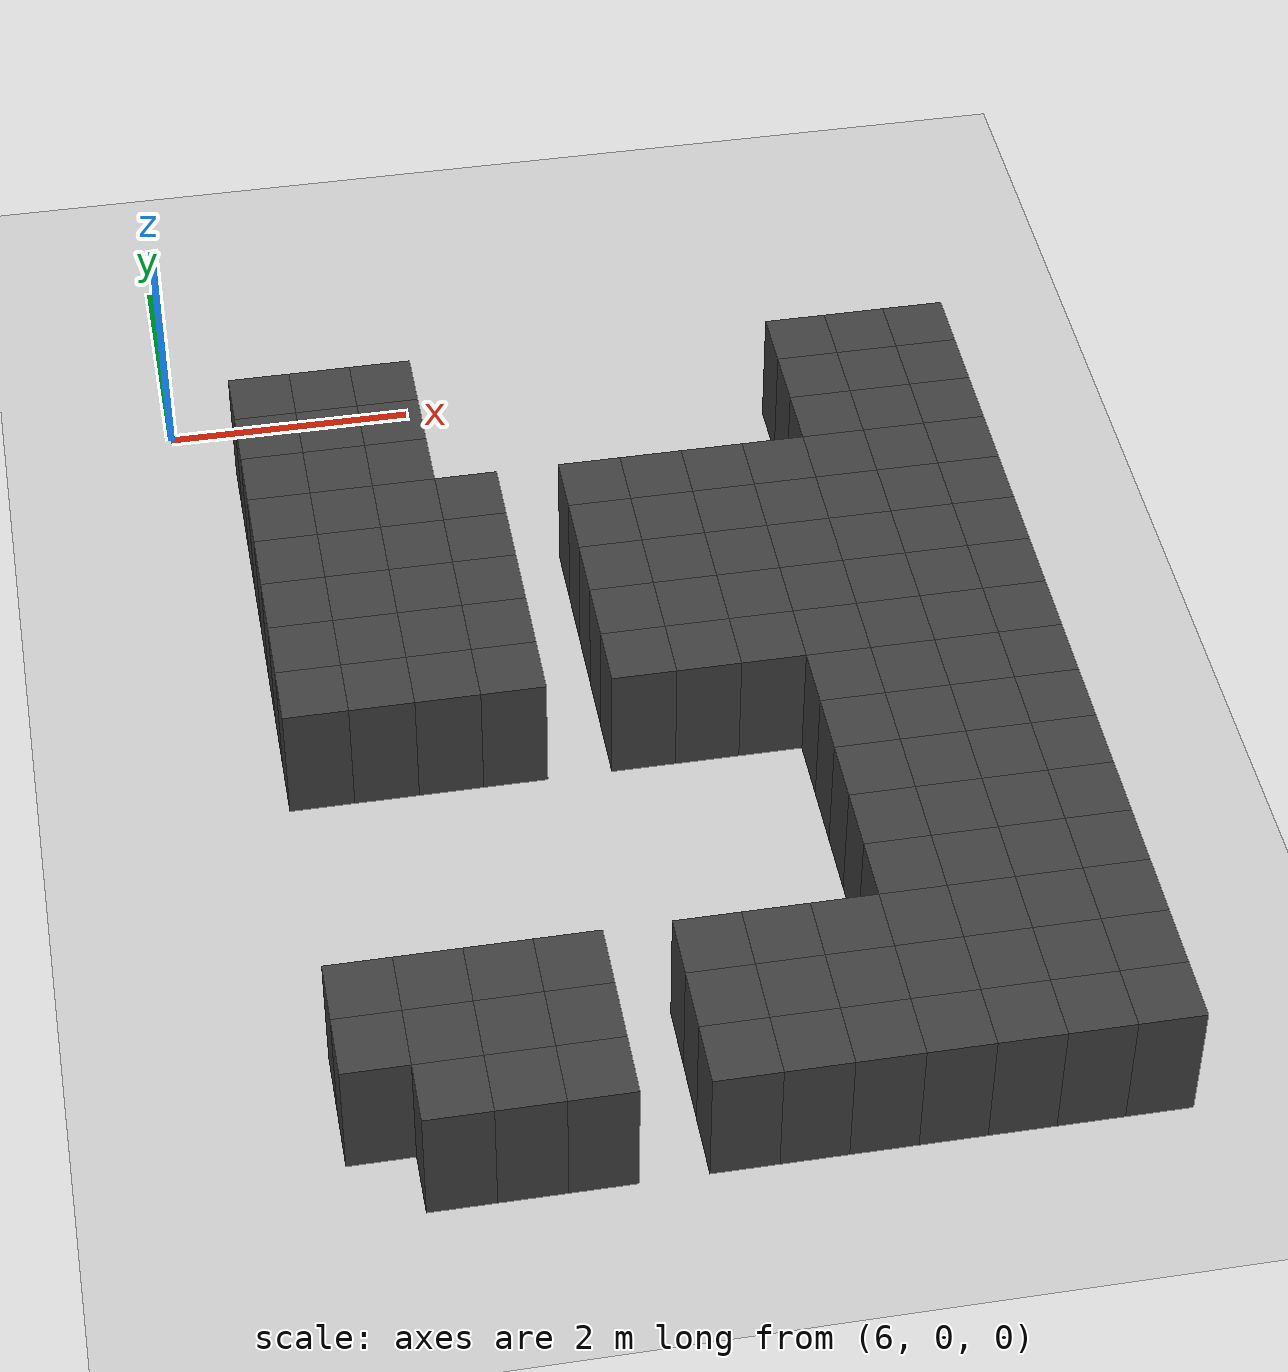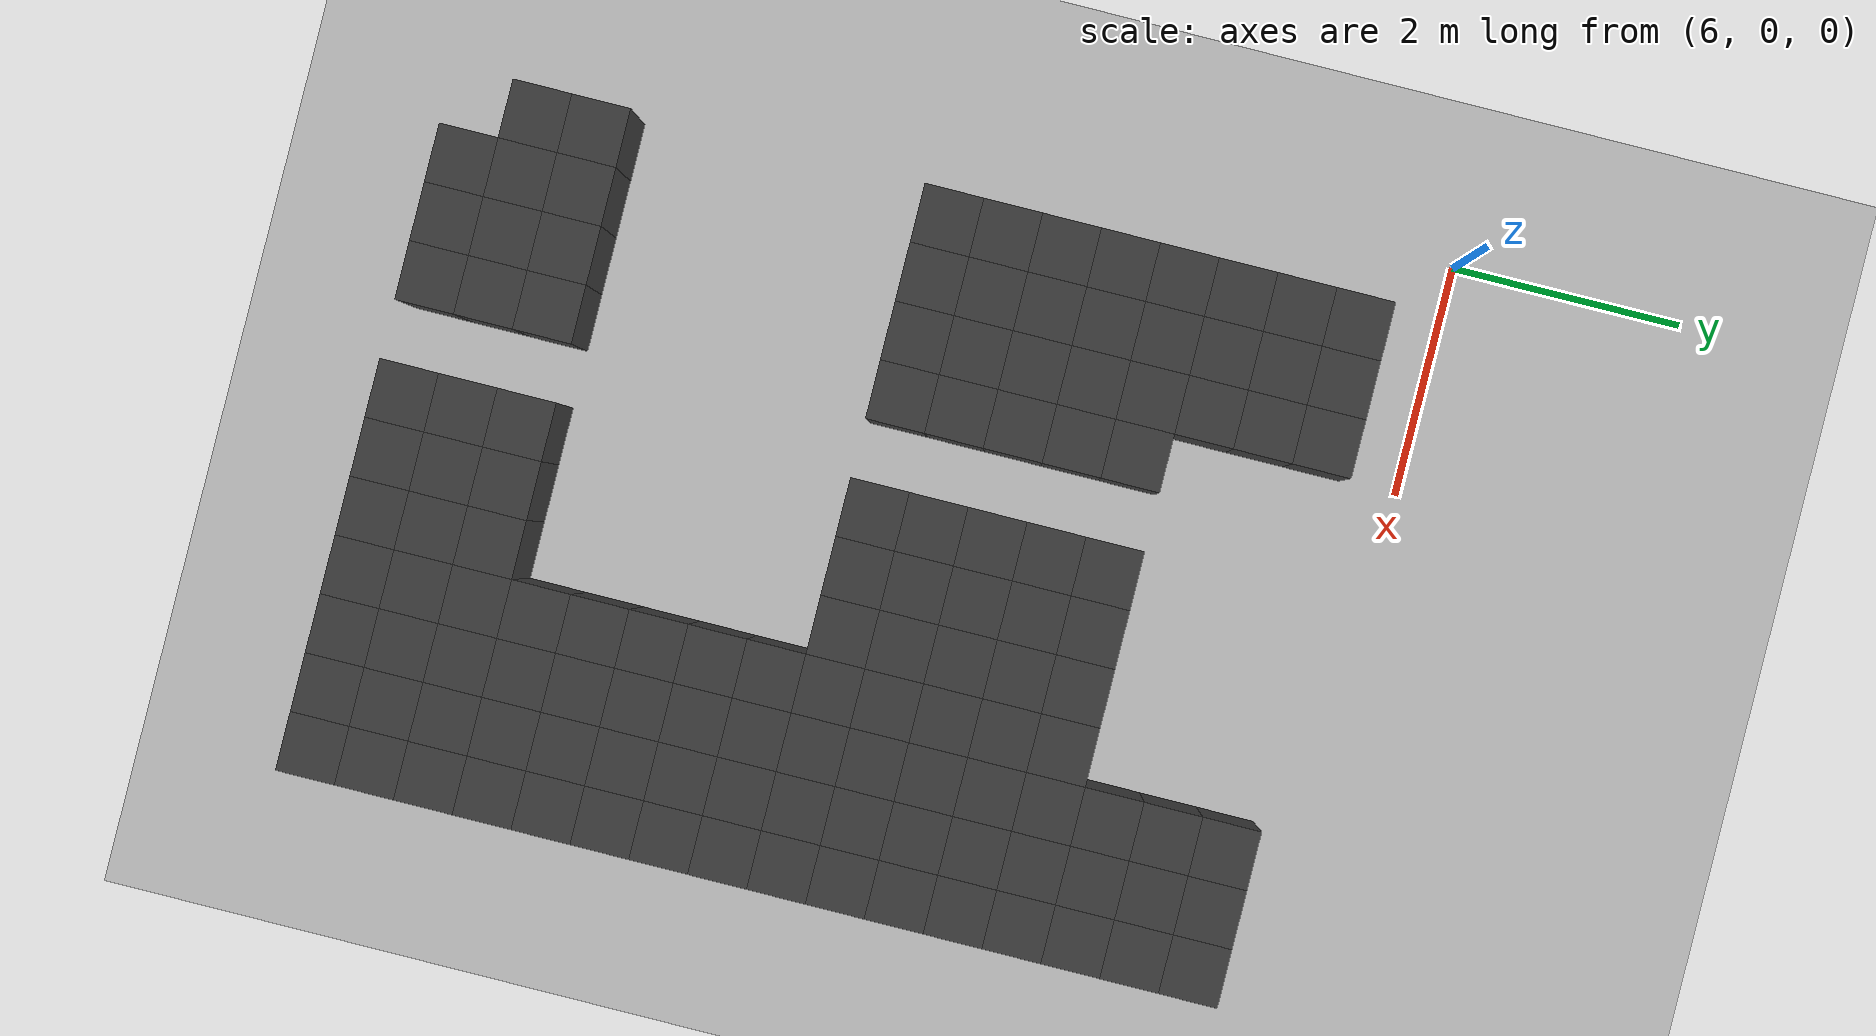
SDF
<sdf version="1.7">
 <world name="map_14495">
  <model name="ground_plane">
   <static>true</static>
   <link name="link">
    <collision name="collision">
     <geometry><plane><normal>0 0 1</normal><size>200 200</size></plane></geometry>
    </collision>
    <visual name="visual">
     <geometry><plane><normal>0 0 1</normal><size>200 200</size></plane></geometry>
     <material><ambient>0.8 0.8 0.8 1</ambient><diffuse>0.8 0.8 0.8 1</diffuse></material>
    </visual>
   </link>
  </model>
  <model name="maze_environment">
   <static>true</static>
   <link name="wall_988">
    <pose>6.750 -0.750 0.500 0 0 0</pose>
    <collision name="col"><geometry><box><size>0.5 0.5 1.0</size></box></geometry></collision>
    <visual name="vis">
     <geometry><box><size>0.5 0.5 1.0</size></box></geometry>
     <material><ambient>0.15 0.15 0.15 1</ambient><diffuse>0.25 0.25 0.25 1</diffuse></material>
    </visual>
   </link>
   <link name="wall_989">
    <pose>7.250 -0.750 0.500 0 0 0</pose>
    <collision name="col"><geometry><box><size>0.5 0.5 1.0</size></box></geometry></collision>
    <visual name="vis">
     <geometry><box><size>0.5 0.5 1.0</size></box></geometry>
     <material><ambient>0.15 0.15 0.15 1</ambient><diffuse>0.25 0.25 0.25 1</diffuse></material>
    </visual>
   </link>
   <link name="wall_990">
    <pose>7.750 -0.750 0.500 0 0 0</pose>
    <collision name="col"><geometry><box><size>0.5 0.5 1.0</size></box></geometry></collision>
    <visual name="vis">
     <geometry><box><size>0.5 0.5 1.0</size></box></geometry>
     <material><ambient>0.15 0.15 0.15 1</ambient><diffuse>0.25 0.25 0.25 1</diffuse></material>
    </visual>
   </link>
   <link name="wall_991">
    <pose>11.250 -0.750 0.500 0 0 0</pose>
    <collision name="col"><geometry><box><size>0.5 0.5 1.0</size></box></geometry></collision>
    <visual name="vis">
     <geometry><box><size>0.5 0.5 1.0</size></box></geometry>
     <material><ambient>0.15 0.15 0.15 1</ambient><diffuse>0.25 0.25 0.25 1</diffuse></material>
    </visual>
   </link>
   <link name="wall_992">
    <pose>11.750 -0.750 0.500 0 0 0</pose>
    <collision name="col"><geometry><box><size>0.5 0.5 1.0</size></box></geometry></collision>
    <visual name="vis">
     <geometry><box><size>0.5 0.5 1.0</size></box></geometry>
     <material><ambient>0.15 0.15 0.15 1</ambient><diffuse>0.25 0.25 0.25 1</diffuse></material>
    </visual>
   </link>
   <link name="wall_993">
    <pose>12.250 -0.750 0.500 0 0 0</pose>
    <collision name="col"><geometry><box><size>0.5 0.5 1.0</size></box></geometry></collision>
    <visual name="vis">
     <geometry><box><size>0.5 0.5 1.0</size></box></geometry>
     <material><ambient>0.15 0.15 0.15 1</ambient><diffuse>0.25 0.25 0.25 1</diffuse></material>
    </visual>
   </link>
   <link name="wall_1014">
    <pose>6.750 -1.250 0.500 0 0 0</pose>
    <collision name="col"><geometry><box><size>0.5 0.5 1.0</size></box></geometry></collision>
    <visual name="vis">
     <geometry><box><size>0.5 0.5 1.0</size></box></geometry>
     <material><ambient>0.15 0.15 0.15 1</ambient><diffuse>0.25 0.25 0.25 1</diffuse></material>
    </visual>
   </link>
   <link name="wall_1015">
    <pose>7.250 -1.250 0.500 0 0 0</pose>
    <collision name="col"><geometry><box><size>0.5 0.5 1.0</size></box></geometry></collision>
    <visual name="vis">
     <geometry><box><size>0.5 0.5 1.0</size></box></geometry>
     <material><ambient>0.15 0.15 0.15 1</ambient><diffuse>0.25 0.25 0.25 1</diffuse></material>
    </visual>
   </link>
   <link name="wall_1016">
    <pose>7.750 -1.250 0.500 0 0 0</pose>
    <collision name="col"><geometry><box><size>0.5 0.5 1.0</size></box></geometry></collision>
    <visual name="vis">
     <geometry><box><size>0.5 0.5 1.0</size></box></geometry>
     <material><ambient>0.15 0.15 0.15 1</ambient><diffuse>0.25 0.25 0.25 1</diffuse></material>
    </visual>
   </link>
   <link name="wall_1017">
    <pose>11.250 -1.250 0.500 0 0 0</pose>
    <collision name="col"><geometry><box><size>0.5 0.5 1.0</size></box></geometry></collision>
    <visual name="vis">
     <geometry><box><size>0.5 0.5 1.0</size></box></geometry>
     <material><ambient>0.15 0.15 0.15 1</ambient><diffuse>0.25 0.25 0.25 1</diffuse></material>
    </visual>
   </link>
   <link name="wall_1018">
    <pose>11.750 -1.250 0.500 0 0 0</pose>
    <collision name="col"><geometry><box><size>0.5 0.5 1.0</size></box></geometry></collision>
    <visual name="vis">
     <geometry><box><size>0.5 0.5 1.0</size></box></geometry>
     <material><ambient>0.15 0.15 0.15 1</ambient><diffuse>0.25 0.25 0.25 1</diffuse></material>
    </visual>
   </link>
   <link name="wall_1019">
    <pose>12.250 -1.250 0.500 0 0 0</pose>
    <collision name="col"><geometry><box><size>0.5 0.5 1.0</size></box></geometry></collision>
    <visual name="vis">
     <geometry><box><size>0.5 0.5 1.0</size></box></geometry>
     <material><ambient>0.15 0.15 0.15 1</ambient><diffuse>0.25 0.25 0.25 1</diffuse></material>
    </visual>
   </link>
   <link name="wall_1040">
    <pose>6.750 -1.750 0.500 0 0 0</pose>
    <collision name="col"><geometry><box><size>0.5 0.5 1.0</size></box></geometry></collision>
    <visual name="vis">
     <geometry><box><size>0.5 0.5 1.0</size></box></geometry>
     <material><ambient>0.15 0.15 0.15 1</ambient><diffuse>0.25 0.25 0.25 1</diffuse></material>
    </visual>
   </link>
   <link name="wall_1041">
    <pose>7.250 -1.750 0.500 0 0 0</pose>
    <collision name="col"><geometry><box><size>0.5 0.5 1.0</size></box></geometry></collision>
    <visual name="vis">
     <geometry><box><size>0.5 0.5 1.0</size></box></geometry>
     <material><ambient>0.15 0.15 0.15 1</ambient><diffuse>0.25 0.25 0.25 1</diffuse></material>
    </visual>
   </link>
   <link name="wall_1042">
    <pose>7.750 -1.750 0.500 0 0 0</pose>
    <collision name="col"><geometry><box><size>0.5 0.5 1.0</size></box></geometry></collision>
    <visual name="vis">
     <geometry><box><size>0.5 0.5 1.0</size></box></geometry>
     <material><ambient>0.15 0.15 0.15 1</ambient><diffuse>0.25 0.25 0.25 1</diffuse></material>
    </visual>
   </link>
   <link name="wall_1043">
    <pose>11.250 -1.750 0.500 0 0 0</pose>
    <collision name="col"><geometry><box><size>0.5 0.5 1.0</size></box></geometry></collision>
    <visual name="vis">
     <geometry><box><size>0.5 0.5 1.0</size></box></geometry>
     <material><ambient>0.15 0.15 0.15 1</ambient><diffuse>0.25 0.25 0.25 1</diffuse></material>
    </visual>
   </link>
   <link name="wall_1044">
    <pose>11.750 -1.750 0.500 0 0 0</pose>
    <collision name="col"><geometry><box><size>0.5 0.5 1.0</size></box></geometry></collision>
    <visual name="vis">
     <geometry><box><size>0.5 0.5 1.0</size></box></geometry>
     <material><ambient>0.15 0.15 0.15 1</ambient><diffuse>0.25 0.25 0.25 1</diffuse></material>
    </visual>
   </link>
   <link name="wall_1045">
    <pose>12.250 -1.750 0.500 0 0 0</pose>
    <collision name="col"><geometry><box><size>0.5 0.5 1.0</size></box></geometry></collision>
    <visual name="vis">
     <geometry><box><size>0.5 0.5 1.0</size></box></geometry>
     <material><ambient>0.15 0.15 0.15 1</ambient><diffuse>0.25 0.25 0.25 1</diffuse></material>
    </visual>
   </link>
   <link name="wall_1068">
    <pose>6.750 -2.250 0.500 0 0 0</pose>
    <collision name="col"><geometry><box><size>0.5 0.5 1.0</size></box></geometry></collision>
    <visual name="vis">
     <geometry><box><size>0.5 0.5 1.0</size></box></geometry>
     <material><ambient>0.15 0.15 0.15 1</ambient><diffuse>0.25 0.25 0.25 1</diffuse></material>
    </visual>
   </link>
   <link name="wall_1069">
    <pose>7.250 -2.250 0.500 0 0 0</pose>
    <collision name="col"><geometry><box><size>0.5 0.5 1.0</size></box></geometry></collision>
    <visual name="vis">
     <geometry><box><size>0.5 0.5 1.0</size></box></geometry>
     <material><ambient>0.15 0.15 0.15 1</ambient><diffuse>0.25 0.25 0.25 1</diffuse></material>
    </visual>
   </link>
   <link name="wall_1070">
    <pose>7.750 -2.250 0.500 0 0 0</pose>
    <collision name="col"><geometry><box><size>0.5 0.5 1.0</size></box></geometry></collision>
    <visual name="vis">
     <geometry><box><size>0.5 0.5 1.0</size></box></geometry>
     <material><ambient>0.15 0.15 0.15 1</ambient><diffuse>0.25 0.25 0.25 1</diffuse></material>
    </visual>
   </link>
   <link name="wall_1071">
    <pose>8.250 -2.250 0.500 0 0 0</pose>
    <collision name="col"><geometry><box><size>0.5 0.5 1.0</size></box></geometry></collision>
    <visual name="vis">
     <geometry><box><size>0.5 0.5 1.0</size></box></geometry>
     <material><ambient>0.15 0.15 0.15 1</ambient><diffuse>0.25 0.25 0.25 1</diffuse></material>
    </visual>
   </link>
   <link name="wall_1072">
    <pose>9.250 -2.250 0.500 0 0 0</pose>
    <collision name="col"><geometry><box><size>0.5 0.5 1.0</size></box></geometry></collision>
    <visual name="vis">
     <geometry><box><size>0.5 0.5 1.0</size></box></geometry>
     <material><ambient>0.15 0.15 0.15 1</ambient><diffuse>0.25 0.25 0.25 1</diffuse></material>
    </visual>
   </link>
   <link name="wall_1073">
    <pose>9.750 -2.250 0.500 0 0 0</pose>
    <collision name="col"><geometry><box><size>0.5 0.5 1.0</size></box></geometry></collision>
    <visual name="vis">
     <geometry><box><size>0.5 0.5 1.0</size></box></geometry>
     <material><ambient>0.15 0.15 0.15 1</ambient><diffuse>0.25 0.25 0.25 1</diffuse></material>
    </visual>
   </link>
   <link name="wall_1074">
    <pose>10.250 -2.250 0.500 0 0 0</pose>
    <collision name="col"><geometry><box><size>0.5 0.5 1.0</size></box></geometry></collision>
    <visual name="vis">
     <geometry><box><size>0.5 0.5 1.0</size></box></geometry>
     <material><ambient>0.15 0.15 0.15 1</ambient><diffuse>0.25 0.25 0.25 1</diffuse></material>
    </visual>
   </link>
   <link name="wall_1075">
    <pose>10.750 -2.250 0.500 0 0 0</pose>
    <collision name="col"><geometry><box><size>0.5 0.5 1.0</size></box></geometry></collision>
    <visual name="vis">
     <geometry><box><size>0.5 0.5 1.0</size></box></geometry>
     <material><ambient>0.15 0.15 0.15 1</ambient><diffuse>0.25 0.25 0.25 1</diffuse></material>
    </visual>
   </link>
   <link name="wall_1076">
    <pose>11.250 -2.250 0.500 0 0 0</pose>
    <collision name="col"><geometry><box><size>0.5 0.5 1.0</size></box></geometry></collision>
    <visual name="vis">
     <geometry><box><size>0.5 0.5 1.0</size></box></geometry>
     <material><ambient>0.15 0.15 0.15 1</ambient><diffuse>0.25 0.25 0.25 1</diffuse></material>
    </visual>
   </link>
   <link name="wall_1077">
    <pose>11.750 -2.250 0.500 0 0 0</pose>
    <collision name="col"><geometry><box><size>0.5 0.5 1.0</size></box></geometry></collision>
    <visual name="vis">
     <geometry><box><size>0.5 0.5 1.0</size></box></geometry>
     <material><ambient>0.15 0.15 0.15 1</ambient><diffuse>0.25 0.25 0.25 1</diffuse></material>
    </visual>
   </link>
   <link name="wall_1078">
    <pose>12.250 -2.250 0.500 0 0 0</pose>
    <collision name="col"><geometry><box><size>0.5 0.5 1.0</size></box></geometry></collision>
    <visual name="vis">
     <geometry><box><size>0.5 0.5 1.0</size></box></geometry>
     <material><ambient>0.15 0.15 0.15 1</ambient><diffuse>0.25 0.25 0.25 1</diffuse></material>
    </visual>
   </link>
   <link name="wall_1103">
    <pose>6.750 -2.750 0.500 0 0 0</pose>
    <collision name="col"><geometry><box><size>0.5 0.5 1.0</size></box></geometry></collision>
    <visual name="vis">
     <geometry><box><size>0.5 0.5 1.0</size></box></geometry>
     <material><ambient>0.15 0.15 0.15 1</ambient><diffuse>0.25 0.25 0.25 1</diffuse></material>
    </visual>
   </link>
   <link name="wall_1104">
    <pose>7.250 -2.750 0.500 0 0 0</pose>
    <collision name="col"><geometry><box><size>0.5 0.5 1.0</size></box></geometry></collision>
    <visual name="vis">
     <geometry><box><size>0.5 0.5 1.0</size></box></geometry>
     <material><ambient>0.15 0.15 0.15 1</ambient><diffuse>0.25 0.25 0.25 1</diffuse></material>
    </visual>
   </link>
   <link name="wall_1105">
    <pose>7.750 -2.750 0.500 0 0 0</pose>
    <collision name="col"><geometry><box><size>0.5 0.5 1.0</size></box></geometry></collision>
    <visual name="vis">
     <geometry><box><size>0.5 0.5 1.0</size></box></geometry>
     <material><ambient>0.15 0.15 0.15 1</ambient><diffuse>0.25 0.25 0.25 1</diffuse></material>
    </visual>
   </link>
   <link name="wall_1106">
    <pose>8.250 -2.750 0.500 0 0 0</pose>
    <collision name="col"><geometry><box><size>0.5 0.5 1.0</size></box></geometry></collision>
    <visual name="vis">
     <geometry><box><size>0.5 0.5 1.0</size></box></geometry>
     <material><ambient>0.15 0.15 0.15 1</ambient><diffuse>0.25 0.25 0.25 1</diffuse></material>
    </visual>
   </link>
   <link name="wall_1107">
    <pose>9.250 -2.750 0.500 0 0 0</pose>
    <collision name="col"><geometry><box><size>0.5 0.5 1.0</size></box></geometry></collision>
    <visual name="vis">
     <geometry><box><size>0.5 0.5 1.0</size></box></geometry>
     <material><ambient>0.15 0.15 0.15 1</ambient><diffuse>0.25 0.25 0.25 1</diffuse></material>
    </visual>
   </link>
   <link name="wall_1108">
    <pose>9.750 -2.750 0.500 0 0 0</pose>
    <collision name="col"><geometry><box><size>0.5 0.5 1.0</size></box></geometry></collision>
    <visual name="vis">
     <geometry><box><size>0.5 0.5 1.0</size></box></geometry>
     <material><ambient>0.15 0.15 0.15 1</ambient><diffuse>0.25 0.25 0.25 1</diffuse></material>
    </visual>
   </link>
   <link name="wall_1109">
    <pose>10.250 -2.750 0.500 0 0 0</pose>
    <collision name="col"><geometry><box><size>0.5 0.5 1.0</size></box></geometry></collision>
    <visual name="vis">
     <geometry><box><size>0.5 0.5 1.0</size></box></geometry>
     <material><ambient>0.15 0.15 0.15 1</ambient><diffuse>0.25 0.25 0.25 1</diffuse></material>
    </visual>
   </link>
   <link name="wall_1110">
    <pose>10.750 -2.750 0.500 0 0 0</pose>
    <collision name="col"><geometry><box><size>0.5 0.5 1.0</size></box></geometry></collision>
    <visual name="vis">
     <geometry><box><size>0.5 0.5 1.0</size></box></geometry>
     <material><ambient>0.15 0.15 0.15 1</ambient><diffuse>0.25 0.25 0.25 1</diffuse></material>
    </visual>
   </link>
   <link name="wall_1111">
    <pose>11.250 -2.750 0.500 0 0 0</pose>
    <collision name="col"><geometry><box><size>0.5 0.5 1.0</size></box></geometry></collision>
    <visual name="vis">
     <geometry><box><size>0.5 0.5 1.0</size></box></geometry>
     <material><ambient>0.15 0.15 0.15 1</ambient><diffuse>0.25 0.25 0.25 1</diffuse></material>
    </visual>
   </link>
   <link name="wall_1112">
    <pose>11.750 -2.750 0.500 0 0 0</pose>
    <collision name="col"><geometry><box><size>0.5 0.5 1.0</size></box></geometry></collision>
    <visual name="vis">
     <geometry><box><size>0.5 0.5 1.0</size></box></geometry>
     <material><ambient>0.15 0.15 0.15 1</ambient><diffuse>0.25 0.25 0.25 1</diffuse></material>
    </visual>
   </link>
   <link name="wall_1113">
    <pose>12.250 -2.750 0.500 0 0 0</pose>
    <collision name="col"><geometry><box><size>0.5 0.5 1.0</size></box></geometry></collision>
    <visual name="vis">
     <geometry><box><size>0.5 0.5 1.0</size></box></geometry>
     <material><ambient>0.15 0.15 0.15 1</ambient><diffuse>0.25 0.25 0.25 1</diffuse></material>
    </visual>
   </link>
   <link name="wall_1138">
    <pose>6.750 -3.250 0.500 0 0 0</pose>
    <collision name="col"><geometry><box><size>0.5 0.5 1.0</size></box></geometry></collision>
    <visual name="vis">
     <geometry><box><size>0.5 0.5 1.0</size></box></geometry>
     <material><ambient>0.15 0.15 0.15 1</ambient><diffuse>0.25 0.25 0.25 1</diffuse></material>
    </visual>
   </link>
   <link name="wall_1139">
    <pose>7.250 -3.250 0.500 0 0 0</pose>
    <collision name="col"><geometry><box><size>0.5 0.5 1.0</size></box></geometry></collision>
    <visual name="vis">
     <geometry><box><size>0.5 0.5 1.0</size></box></geometry>
     <material><ambient>0.15 0.15 0.15 1</ambient><diffuse>0.25 0.25 0.25 1</diffuse></material>
    </visual>
   </link>
   <link name="wall_1140">
    <pose>7.750 -3.250 0.500 0 0 0</pose>
    <collision name="col"><geometry><box><size>0.5 0.5 1.0</size></box></geometry></collision>
    <visual name="vis">
     <geometry><box><size>0.5 0.5 1.0</size></box></geometry>
     <material><ambient>0.15 0.15 0.15 1</ambient><diffuse>0.25 0.25 0.25 1</diffuse></material>
    </visual>
   </link>
   <link name="wall_1141">
    <pose>8.250 -3.250 0.500 0 0 0</pose>
    <collision name="col"><geometry><box><size>0.5 0.5 1.0</size></box></geometry></collision>
    <visual name="vis">
     <geometry><box><size>0.5 0.5 1.0</size></box></geometry>
     <material><ambient>0.15 0.15 0.15 1</ambient><diffuse>0.25 0.25 0.25 1</diffuse></material>
    </visual>
   </link>
   <link name="wall_1142">
    <pose>9.250 -3.250 0.500 0 0 0</pose>
    <collision name="col"><geometry><box><size>0.5 0.5 1.0</size></box></geometry></collision>
    <visual name="vis">
     <geometry><box><size>0.5 0.5 1.0</size></box></geometry>
     <material><ambient>0.15 0.15 0.15 1</ambient><diffuse>0.25 0.25 0.25 1</diffuse></material>
    </visual>
   </link>
   <link name="wall_1143">
    <pose>9.750 -3.250 0.500 0 0 0</pose>
    <collision name="col"><geometry><box><size>0.5 0.5 1.0</size></box></geometry></collision>
    <visual name="vis">
     <geometry><box><size>0.5 0.5 1.0</size></box></geometry>
     <material><ambient>0.15 0.15 0.15 1</ambient><diffuse>0.25 0.25 0.25 1</diffuse></material>
    </visual>
   </link>
   <link name="wall_1144">
    <pose>10.250 -3.250 0.500 0 0 0</pose>
    <collision name="col"><geometry><box><size>0.5 0.5 1.0</size></box></geometry></collision>
    <visual name="vis">
     <geometry><box><size>0.5 0.5 1.0</size></box></geometry>
     <material><ambient>0.15 0.15 0.15 1</ambient><diffuse>0.25 0.25 0.25 1</diffuse></material>
    </visual>
   </link>
   <link name="wall_1145">
    <pose>10.750 -3.250 0.500 0 0 0</pose>
    <collision name="col"><geometry><box><size>0.5 0.5 1.0</size></box></geometry></collision>
    <visual name="vis">
     <geometry><box><size>0.5 0.5 1.0</size></box></geometry>
     <material><ambient>0.15 0.15 0.15 1</ambient><diffuse>0.25 0.25 0.25 1</diffuse></material>
    </visual>
   </link>
   <link name="wall_1146">
    <pose>11.250 -3.250 0.500 0 0 0</pose>
    <collision name="col"><geometry><box><size>0.5 0.5 1.0</size></box></geometry></collision>
    <visual name="vis">
     <geometry><box><size>0.5 0.5 1.0</size></box></geometry>
     <material><ambient>0.15 0.15 0.15 1</ambient><diffuse>0.25 0.25 0.25 1</diffuse></material>
    </visual>
   </link>
   <link name="wall_1147">
    <pose>11.750 -3.250 0.500 0 0 0</pose>
    <collision name="col"><geometry><box><size>0.5 0.5 1.0</size></box></geometry></collision>
    <visual name="vis">
     <geometry><box><size>0.5 0.5 1.0</size></box></geometry>
     <material><ambient>0.15 0.15 0.15 1</ambient><diffuse>0.25 0.25 0.25 1</diffuse></material>
    </visual>
   </link>
   <link name="wall_1148">
    <pose>12.250 -3.250 0.500 0 0 0</pose>
    <collision name="col"><geometry><box><size>0.5 0.5 1.0</size></box></geometry></collision>
    <visual name="vis">
     <geometry><box><size>0.5 0.5 1.0</size></box></geometry>
     <material><ambient>0.15 0.15 0.15 1</ambient><diffuse>0.25 0.25 0.25 1</diffuse></material>
    </visual>
   </link>
   <link name="wall_1185">
    <pose>6.750 -3.750 0.500 0 0 0</pose>
    <collision name="col"><geometry><box><size>0.5 0.5 1.0</size></box></geometry></collision>
    <visual name="vis">
     <geometry><box><size>0.5 0.5 1.0</size></box></geometry>
     <material><ambient>0.15 0.15 0.15 1</ambient><diffuse>0.25 0.25 0.25 1</diffuse></material>
    </visual>
   </link>
   <link name="wall_1186">
    <pose>7.250 -3.750 0.500 0 0 0</pose>
    <collision name="col"><geometry><box><size>0.5 0.5 1.0</size></box></geometry></collision>
    <visual name="vis">
     <geometry><box><size>0.5 0.5 1.0</size></box></geometry>
     <material><ambient>0.15 0.15 0.15 1</ambient><diffuse>0.25 0.25 0.25 1</diffuse></material>
    </visual>
   </link>
   <link name="wall_1187">
    <pose>7.750 -3.750 0.500 0 0 0</pose>
    <collision name="col"><geometry><box><size>0.5 0.5 1.0</size></box></geometry></collision>
    <visual name="vis">
     <geometry><box><size>0.5 0.5 1.0</size></box></geometry>
     <material><ambient>0.15 0.15 0.15 1</ambient><diffuse>0.25 0.25 0.25 1</diffuse></material>
    </visual>
   </link>
   <link name="wall_1188">
    <pose>8.250 -3.750 0.500 0 0 0</pose>
    <collision name="col"><geometry><box><size>0.5 0.5 1.0</size></box></geometry></collision>
    <visual name="vis">
     <geometry><box><size>0.5 0.5 1.0</size></box></geometry>
     <material><ambient>0.15 0.15 0.15 1</ambient><diffuse>0.25 0.25 0.25 1</diffuse></material>
    </visual>
   </link>
   <link name="wall_1189">
    <pose>9.250 -3.750 0.500 0 0 0</pose>
    <collision name="col"><geometry><box><size>0.5 0.5 1.0</size></box></geometry></collision>
    <visual name="vis">
     <geometry><box><size>0.5 0.5 1.0</size></box></geometry>
     <material><ambient>0.15 0.15 0.15 1</ambient><diffuse>0.25 0.25 0.25 1</diffuse></material>
    </visual>
   </link>
   <link name="wall_1190">
    <pose>9.750 -3.750 0.500 0 0 0</pose>
    <collision name="col"><geometry><box><size>0.5 0.5 1.0</size></box></geometry></collision>
    <visual name="vis">
     <geometry><box><size>0.5 0.5 1.0</size></box></geometry>
     <material><ambient>0.15 0.15 0.15 1</ambient><diffuse>0.25 0.25 0.25 1</diffuse></material>
    </visual>
   </link>
   <link name="wall_1191">
    <pose>10.250 -3.750 0.500 0 0 0</pose>
    <collision name="col"><geometry><box><size>0.5 0.5 1.0</size></box></geometry></collision>
    <visual name="vis">
     <geometry><box><size>0.5 0.5 1.0</size></box></geometry>
     <material><ambient>0.15 0.15 0.15 1</ambient><diffuse>0.25 0.25 0.25 1</diffuse></material>
    </visual>
   </link>
   <link name="wall_1192">
    <pose>10.750 -3.750 0.500 0 0 0</pose>
    <collision name="col"><geometry><box><size>0.5 0.5 1.0</size></box></geometry></collision>
    <visual name="vis">
     <geometry><box><size>0.5 0.5 1.0</size></box></geometry>
     <material><ambient>0.15 0.15 0.15 1</ambient><diffuse>0.25 0.25 0.25 1</diffuse></material>
    </visual>
   </link>
   <link name="wall_1193">
    <pose>11.250 -3.750 0.500 0 0 0</pose>
    <collision name="col"><geometry><box><size>0.5 0.5 1.0</size></box></geometry></collision>
    <visual name="vis">
     <geometry><box><size>0.5 0.5 1.0</size></box></geometry>
     <material><ambient>0.15 0.15 0.15 1</ambient><diffuse>0.25 0.25 0.25 1</diffuse></material>
    </visual>
   </link>
   <link name="wall_1194">
    <pose>11.750 -3.750 0.500 0 0 0</pose>
    <collision name="col"><geometry><box><size>0.5 0.5 1.0</size></box></geometry></collision>
    <visual name="vis">
     <geometry><box><size>0.5 0.5 1.0</size></box></geometry>
     <material><ambient>0.15 0.15 0.15 1</ambient><diffuse>0.25 0.25 0.25 1</diffuse></material>
    </visual>
   </link>
   <link name="wall_1195">
    <pose>12.250 -3.750 0.500 0 0 0</pose>
    <collision name="col"><geometry><box><size>0.5 0.5 1.0</size></box></geometry></collision>
    <visual name="vis">
     <geometry><box><size>0.5 0.5 1.0</size></box></geometry>
     <material><ambient>0.15 0.15 0.15 1</ambient><diffuse>0.25 0.25 0.25 1</diffuse></material>
    </visual>
   </link>
   <link name="wall_1232">
    <pose>6.750 -4.250 0.500 0 0 0</pose>
    <collision name="col"><geometry><box><size>0.5 0.5 1.0</size></box></geometry></collision>
    <visual name="vis">
     <geometry><box><size>0.5 0.5 1.0</size></box></geometry>
     <material><ambient>0.15 0.15 0.15 1</ambient><diffuse>0.25 0.25 0.25 1</diffuse></material>
    </visual>
   </link>
   <link name="wall_1233">
    <pose>7.250 -4.250 0.500 0 0 0</pose>
    <collision name="col"><geometry><box><size>0.5 0.5 1.0</size></box></geometry></collision>
    <visual name="vis">
     <geometry><box><size>0.5 0.5 1.0</size></box></geometry>
     <material><ambient>0.15 0.15 0.15 1</ambient><diffuse>0.25 0.25 0.25 1</diffuse></material>
    </visual>
   </link>
   <link name="wall_1234">
    <pose>7.750 -4.250 0.500 0 0 0</pose>
    <collision name="col"><geometry><box><size>0.5 0.5 1.0</size></box></geometry></collision>
    <visual name="vis">
     <geometry><box><size>0.5 0.5 1.0</size></box></geometry>
     <material><ambient>0.15 0.15 0.15 1</ambient><diffuse>0.25 0.25 0.25 1</diffuse></material>
    </visual>
   </link>
   <link name="wall_1235">
    <pose>8.250 -4.250 0.500 0 0 0</pose>
    <collision name="col"><geometry><box><size>0.5 0.5 1.0</size></box></geometry></collision>
    <visual name="vis">
     <geometry><box><size>0.5 0.5 1.0</size></box></geometry>
     <material><ambient>0.15 0.15 0.15 1</ambient><diffuse>0.25 0.25 0.25 1</diffuse></material>
    </visual>
   </link>
   <link name="wall_1236">
    <pose>9.250 -4.250 0.500 0 0 0</pose>
    <collision name="col"><geometry><box><size>0.5 0.5 1.0</size></box></geometry></collision>
    <visual name="vis">
     <geometry><box><size>0.5 0.5 1.0</size></box></geometry>
     <material><ambient>0.15 0.15 0.15 1</ambient><diffuse>0.25 0.25 0.25 1</diffuse></material>
    </visual>
   </link>
   <link name="wall_1237">
    <pose>9.750 -4.250 0.500 0 0 0</pose>
    <collision name="col"><geometry><box><size>0.5 0.5 1.0</size></box></geometry></collision>
    <visual name="vis">
     <geometry><box><size>0.5 0.5 1.0</size></box></geometry>
     <material><ambient>0.15 0.15 0.15 1</ambient><diffuse>0.25 0.25 0.25 1</diffuse></material>
    </visual>
   </link>
   <link name="wall_1238">
    <pose>10.250 -4.250 0.500 0 0 0</pose>
    <collision name="col"><geometry><box><size>0.5 0.5 1.0</size></box></geometry></collision>
    <visual name="vis">
     <geometry><box><size>0.5 0.5 1.0</size></box></geometry>
     <material><ambient>0.15 0.15 0.15 1</ambient><diffuse>0.25 0.25 0.25 1</diffuse></material>
    </visual>
   </link>
   <link name="wall_1239">
    <pose>10.750 -4.250 0.500 0 0 0</pose>
    <collision name="col"><geometry><box><size>0.5 0.5 1.0</size></box></geometry></collision>
    <visual name="vis">
     <geometry><box><size>0.5 0.5 1.0</size></box></geometry>
     <material><ambient>0.15 0.15 0.15 1</ambient><diffuse>0.25 0.25 0.25 1</diffuse></material>
    </visual>
   </link>
   <link name="wall_1240">
    <pose>11.250 -4.250 0.500 0 0 0</pose>
    <collision name="col"><geometry><box><size>0.5 0.5 1.0</size></box></geometry></collision>
    <visual name="vis">
     <geometry><box><size>0.5 0.5 1.0</size></box></geometry>
     <material><ambient>0.15 0.15 0.15 1</ambient><diffuse>0.25 0.25 0.25 1</diffuse></material>
    </visual>
   </link>
   <link name="wall_1241">
    <pose>11.750 -4.250 0.500 0 0 0</pose>
    <collision name="col"><geometry><box><size>0.5 0.5 1.0</size></box></geometry></collision>
    <visual name="vis">
     <geometry><box><size>0.5 0.5 1.0</size></box></geometry>
     <material><ambient>0.15 0.15 0.15 1</ambient><diffuse>0.25 0.25 0.25 1</diffuse></material>
    </visual>
   </link>
   <link name="wall_1242">
    <pose>12.250 -4.250 0.500 0 0 0</pose>
    <collision name="col"><geometry><box><size>0.5 0.5 1.0</size></box></geometry></collision>
    <visual name="vis">
     <geometry><box><size>0.5 0.5 1.0</size></box></geometry>
     <material><ambient>0.15 0.15 0.15 1</ambient><diffuse>0.25 0.25 0.25 1</diffuse></material>
    </visual>
   </link>
   <link name="wall_1275">
    <pose>10.750 -4.750 0.500 0 0 0</pose>
    <collision name="col"><geometry><box><size>0.5 0.5 1.0</size></box></geometry></collision>
    <visual name="vis">
     <geometry><box><size>0.5 0.5 1.0</size></box></geometry>
     <material><ambient>0.15 0.15 0.15 1</ambient><diffuse>0.25 0.25 0.25 1</diffuse></material>
    </visual>
   </link>
   <link name="wall_1276">
    <pose>11.250 -4.750 0.500 0 0 0</pose>
    <collision name="col"><geometry><box><size>0.5 0.5 1.0</size></box></geometry></collision>
    <visual name="vis">
     <geometry><box><size>0.5 0.5 1.0</size></box></geometry>
     <material><ambient>0.15 0.15 0.15 1</ambient><diffuse>0.25 0.25 0.25 1</diffuse></material>
    </visual>
   </link>
   <link name="wall_1277">
    <pose>11.750 -4.750 0.500 0 0 0</pose>
    <collision name="col"><geometry><box><size>0.5 0.5 1.0</size></box></geometry></collision>
    <visual name="vis">
     <geometry><box><size>0.5 0.5 1.0</size></box></geometry>
     <material><ambient>0.15 0.15 0.15 1</ambient><diffuse>0.25 0.25 0.25 1</diffuse></material>
    </visual>
   </link>
   <link name="wall_1278">
    <pose>12.250 -4.750 0.500 0 0 0</pose>
    <collision name="col"><geometry><box><size>0.5 0.5 1.0</size></box></geometry></collision>
    <visual name="vis">
     <geometry><box><size>0.5 0.5 1.0</size></box></geometry>
     <material><ambient>0.15 0.15 0.15 1</ambient><diffuse>0.25 0.25 0.25 1</diffuse></material>
    </visual>
   </link>
   <link name="wall_1311">
    <pose>10.750 -5.250 0.500 0 0 0</pose>
    <collision name="col"><geometry><box><size>0.5 0.5 1.0</size></box></geometry></collision>
    <visual name="vis">
     <geometry><box><size>0.5 0.5 1.0</size></box></geometry>
     <material><ambient>0.15 0.15 0.15 1</ambient><diffuse>0.25 0.25 0.25 1</diffuse></material>
    </visual>
   </link>
   <link name="wall_1312">
    <pose>11.250 -5.250 0.500 0 0 0</pose>
    <collision name="col"><geometry><box><size>0.5 0.5 1.0</size></box></geometry></collision>
    <visual name="vis">
     <geometry><box><size>0.5 0.5 1.0</size></box></geometry>
     <material><ambient>0.15 0.15 0.15 1</ambient><diffuse>0.25 0.25 0.25 1</diffuse></material>
    </visual>
   </link>
   <link name="wall_1313">
    <pose>11.750 -5.250 0.500 0 0 0</pose>
    <collision name="col"><geometry><box><size>0.5 0.5 1.0</size></box></geometry></collision>
    <visual name="vis">
     <geometry><box><size>0.5 0.5 1.0</size></box></geometry>
     <material><ambient>0.15 0.15 0.15 1</ambient><diffuse>0.25 0.25 0.25 1</diffuse></material>
    </visual>
   </link>
   <link name="wall_1314">
    <pose>12.250 -5.250 0.500 0 0 0</pose>
    <collision name="col"><geometry><box><size>0.5 0.5 1.0</size></box></geometry></collision>
    <visual name="vis">
     <geometry><box><size>0.5 0.5 1.0</size></box></geometry>
     <material><ambient>0.15 0.15 0.15 1</ambient><diffuse>0.25 0.25 0.25 1</diffuse></material>
    </visual>
   </link>
   <link name="wall_1335">
    <pose>10.750 -5.750 0.500 0 0 0</pose>
    <collision name="col"><geometry><box><size>0.5 0.5 1.0</size></box></geometry></collision>
    <visual name="vis">
     <geometry><box><size>0.5 0.5 1.0</size></box></geometry>
     <material><ambient>0.15 0.15 0.15 1</ambient><diffuse>0.25 0.25 0.25 1</diffuse></material>
    </visual>
   </link>
   <link name="wall_1336">
    <pose>11.250 -5.750 0.500 0 0 0</pose>
    <collision name="col"><geometry><box><size>0.5 0.5 1.0</size></box></geometry></collision>
    <visual name="vis">
     <geometry><box><size>0.5 0.5 1.0</size></box></geometry>
     <material><ambient>0.15 0.15 0.15 1</ambient><diffuse>0.25 0.25 0.25 1</diffuse></material>
    </visual>
   </link>
   <link name="wall_1337">
    <pose>11.750 -5.750 0.500 0 0 0</pose>
    <collision name="col"><geometry><box><size>0.5 0.5 1.0</size></box></geometry></collision>
    <visual name="vis">
     <geometry><box><size>0.5 0.5 1.0</size></box></geometry>
     <material><ambient>0.15 0.15 0.15 1</ambient><diffuse>0.25 0.25 0.25 1</diffuse></material>
    </visual>
   </link>
   <link name="wall_1338">
    <pose>12.250 -5.750 0.500 0 0 0</pose>
    <collision name="col"><geometry><box><size>0.5 0.5 1.0</size></box></geometry></collision>
    <visual name="vis">
     <geometry><box><size>0.5 0.5 1.0</size></box></geometry>
     <material><ambient>0.15 0.15 0.15 1</ambient><diffuse>0.25 0.25 0.25 1</diffuse></material>
    </visual>
   </link>
   <link name="wall_1357">
    <pose>10.750 -6.250 0.500 0 0 0</pose>
    <collision name="col"><geometry><box><size>0.5 0.5 1.0</size></box></geometry></collision>
    <visual name="vis">
     <geometry><box><size>0.5 0.5 1.0</size></box></geometry>
     <material><ambient>0.15 0.15 0.15 1</ambient><diffuse>0.25 0.25 0.25 1</diffuse></material>
    </visual>
   </link>
   <link name="wall_1358">
    <pose>11.250 -6.250 0.500 0 0 0</pose>
    <collision name="col"><geometry><box><size>0.5 0.5 1.0</size></box></geometry></collision>
    <visual name="vis">
     <geometry><box><size>0.5 0.5 1.0</size></box></geometry>
     <material><ambient>0.15 0.15 0.15 1</ambient><diffuse>0.25 0.25 0.25 1</diffuse></material>
    </visual>
   </link>
   <link name="wall_1359">
    <pose>11.750 -6.250 0.500 0 0 0</pose>
    <collision name="col"><geometry><box><size>0.5 0.5 1.0</size></box></geometry></collision>
    <visual name="vis">
     <geometry><box><size>0.5 0.5 1.0</size></box></geometry>
     <material><ambient>0.15 0.15 0.15 1</ambient><diffuse>0.25 0.25 0.25 1</diffuse></material>
    </visual>
   </link>
   <link name="wall_1360">
    <pose>12.250 -6.250 0.500 0 0 0</pose>
    <collision name="col"><geometry><box><size>0.5 0.5 1.0</size></box></geometry></collision>
    <visual name="vis">
     <geometry><box><size>0.5 0.5 1.0</size></box></geometry>
     <material><ambient>0.15 0.15 0.15 1</ambient><diffuse>0.25 0.25 0.25 1</diffuse></material>
    </visual>
   </link>
   <link name="wall_1383">
    <pose>10.750 -6.750 0.500 0 0 0</pose>
    <collision name="col"><geometry><box><size>0.5 0.5 1.0</size></box></geometry></collision>
    <visual name="vis">
     <geometry><box><size>0.5 0.5 1.0</size></box></geometry>
     <material><ambient>0.15 0.15 0.15 1</ambient><diffuse>0.25 0.25 0.25 1</diffuse></material>
    </visual>
   </link>
   <link name="wall_1384">
    <pose>11.250 -6.750 0.500 0 0 0</pose>
    <collision name="col"><geometry><box><size>0.5 0.5 1.0</size></box></geometry></collision>
    <visual name="vis">
     <geometry><box><size>0.5 0.5 1.0</size></box></geometry>
     <material><ambient>0.15 0.15 0.15 1</ambient><diffuse>0.25 0.25 0.25 1</diffuse></material>
    </visual>
   </link>
   <link name="wall_1385">
    <pose>11.750 -6.750 0.500 0 0 0</pose>
    <collision name="col"><geometry><box><size>0.5 0.5 1.0</size></box></geometry></collision>
    <visual name="vis">
     <geometry><box><size>0.5 0.5 1.0</size></box></geometry>
     <material><ambient>0.15 0.15 0.15 1</ambient><diffuse>0.25 0.25 0.25 1</diffuse></material>
    </visual>
   </link>
   <link name="wall_1386">
    <pose>12.250 -6.750 0.500 0 0 0</pose>
    <collision name="col"><geometry><box><size>0.5 0.5 1.0</size></box></geometry></collision>
    <visual name="vis">
     <geometry><box><size>0.5 0.5 1.0</size></box></geometry>
     <material><ambient>0.15 0.15 0.15 1</ambient><diffuse>0.25 0.25 0.25 1</diffuse></material>
    </visual>
   </link>
   <link name="wall_1409">
    <pose>6.750 -7.250 0.500 0 0 0</pose>
    <collision name="col"><geometry><box><size>0.5 0.5 1.0</size></box></geometry></collision>
    <visual name="vis">
     <geometry><box><size>0.5 0.5 1.0</size></box></geometry>
     <material><ambient>0.15 0.15 0.15 1</ambient><diffuse>0.25 0.25 0.25 1</diffuse></material>
    </visual>
   </link>
   <link name="wall_1410">
    <pose>7.250 -7.250 0.500 0 0 0</pose>
    <collision name="col"><geometry><box><size>0.5 0.5 1.0</size></box></geometry></collision>
    <visual name="vis">
     <geometry><box><size>0.5 0.5 1.0</size></box></geometry>
     <material><ambient>0.15 0.15 0.15 1</ambient><diffuse>0.25 0.25 0.25 1</diffuse></material>
    </visual>
   </link>
   <link name="wall_1411">
    <pose>7.750 -7.250 0.500 0 0 0</pose>
    <collision name="col"><geometry><box><size>0.5 0.5 1.0</size></box></geometry></collision>
    <visual name="vis">
     <geometry><box><size>0.5 0.5 1.0</size></box></geometry>
     <material><ambient>0.15 0.15 0.15 1</ambient><diffuse>0.25 0.25 0.25 1</diffuse></material>
    </visual>
   </link>
   <link name="wall_1412">
    <pose>8.250 -7.250 0.500 0 0 0</pose>
    <collision name="col"><geometry><box><size>0.5 0.5 1.0</size></box></geometry></collision>
    <visual name="vis">
     <geometry><box><size>0.5 0.5 1.0</size></box></geometry>
     <material><ambient>0.15 0.15 0.15 1</ambient><diffuse>0.25 0.25 0.25 1</diffuse></material>
    </visual>
   </link>
   <link name="wall_1413">
    <pose>9.250 -7.250 0.500 0 0 0</pose>
    <collision name="col"><geometry><box><size>0.5 0.5 1.0</size></box></geometry></collision>
    <visual name="vis">
     <geometry><box><size>0.5 0.5 1.0</size></box></geometry>
     <material><ambient>0.15 0.15 0.15 1</ambient><diffuse>0.25 0.25 0.25 1</diffuse></material>
    </visual>
   </link>
   <link name="wall_1414">
    <pose>9.750 -7.250 0.500 0 0 0</pose>
    <collision name="col"><geometry><box><size>0.5 0.5 1.0</size></box></geometry></collision>
    <visual name="vis">
     <geometry><box><size>0.5 0.5 1.0</size></box></geometry>
     <material><ambient>0.15 0.15 0.15 1</ambient><diffuse>0.25 0.25 0.25 1</diffuse></material>
    </visual>
   </link>
   <link name="wall_1415">
    <pose>10.250 -7.250 0.500 0 0 0</pose>
    <collision name="col"><geometry><box><size>0.5 0.5 1.0</size></box></geometry></collision>
    <visual name="vis">
     <geometry><box><size>0.5 0.5 1.0</size></box></geometry>
     <material><ambient>0.15 0.15 0.15 1</ambient><diffuse>0.25 0.25 0.25 1</diffuse></material>
    </visual>
   </link>
   <link name="wall_1416">
    <pose>10.750 -7.250 0.500 0 0 0</pose>
    <collision name="col"><geometry><box><size>0.5 0.5 1.0</size></box></geometry></collision>
    <visual name="vis">
     <geometry><box><size>0.5 0.5 1.0</size></box></geometry>
     <material><ambient>0.15 0.15 0.15 1</ambient><diffuse>0.25 0.25 0.25 1</diffuse></material>
    </visual>
   </link>
   <link name="wall_1417">
    <pose>11.250 -7.250 0.500 0 0 0</pose>
    <collision name="col"><geometry><box><size>0.5 0.5 1.0</size></box></geometry></collision>
    <visual name="vis">
     <geometry><box><size>0.5 0.5 1.0</size></box></geometry>
     <material><ambient>0.15 0.15 0.15 1</ambient><diffuse>0.25 0.25 0.25 1</diffuse></material>
    </visual>
   </link>
   <link name="wall_1418">
    <pose>11.750 -7.250 0.500 0 0 0</pose>
    <collision name="col"><geometry><box><size>0.5 0.5 1.0</size></box></geometry></collision>
    <visual name="vis">
     <geometry><box><size>0.5 0.5 1.0</size></box></geometry>
     <material><ambient>0.15 0.15 0.15 1</ambient><diffuse>0.25 0.25 0.25 1</diffuse></material>
    </visual>
   </link>
   <link name="wall_1419">
    <pose>12.250 -7.250 0.500 0 0 0</pose>
    <collision name="col"><geometry><box><size>0.5 0.5 1.0</size></box></geometry></collision>
    <visual name="vis">
     <geometry><box><size>0.5 0.5 1.0</size></box></geometry>
     <material><ambient>0.15 0.15 0.15 1</ambient><diffuse>0.25 0.25 0.25 1</diffuse></material>
    </visual>
   </link>
   <link name="wall_1442">
    <pose>6.750 -7.750 0.500 0 0 0</pose>
    <collision name="col"><geometry><box><size>0.5 0.5 1.0</size></box></geometry></collision>
    <visual name="vis">
     <geometry><box><size>0.5 0.5 1.0</size></box></geometry>
     <material><ambient>0.15 0.15 0.15 1</ambient><diffuse>0.25 0.25 0.25 1</diffuse></material>
    </visual>
   </link>
   <link name="wall_1443">
    <pose>7.250 -7.750 0.500 0 0 0</pose>
    <collision name="col"><geometry><box><size>0.5 0.5 1.0</size></box></geometry></collision>
    <visual name="vis">
     <geometry><box><size>0.5 0.5 1.0</size></box></geometry>
     <material><ambient>0.15 0.15 0.15 1</ambient><diffuse>0.25 0.25 0.25 1</diffuse></material>
    </visual>
   </link>
   <link name="wall_1444">
    <pose>7.750 -7.750 0.500 0 0 0</pose>
    <collision name="col"><geometry><box><size>0.5 0.5 1.0</size></box></geometry></collision>
    <visual name="vis">
     <geometry><box><size>0.5 0.5 1.0</size></box></geometry>
     <material><ambient>0.15 0.15 0.15 1</ambient><diffuse>0.25 0.25 0.25 1</diffuse></material>
    </visual>
   </link>
   <link name="wall_1445">
    <pose>8.250 -7.750 0.500 0 0 0</pose>
    <collision name="col"><geometry><box><size>0.5 0.5 1.0</size></box></geometry></collision>
    <visual name="vis">
     <geometry><box><size>0.5 0.5 1.0</size></box></geometry>
     <material><ambient>0.15 0.15 0.15 1</ambient><diffuse>0.25 0.25 0.25 1</diffuse></material>
    </visual>
   </link>
   <link name="wall_1446">
    <pose>9.250 -7.750 0.500 0 0 0</pose>
    <collision name="col"><geometry><box><size>0.5 0.5 1.0</size></box></geometry></collision>
    <visual name="vis">
     <geometry><box><size>0.5 0.5 1.0</size></box></geometry>
     <material><ambient>0.15 0.15 0.15 1</ambient><diffuse>0.25 0.25 0.25 1</diffuse></material>
    </visual>
   </link>
   <link name="wall_1447">
    <pose>9.750 -7.750 0.500 0 0 0</pose>
    <collision name="col"><geometry><box><size>0.5 0.5 1.0</size></box></geometry></collision>
    <visual name="vis">
     <geometry><box><size>0.5 0.5 1.0</size></box></geometry>
     <material><ambient>0.15 0.15 0.15 1</ambient><diffuse>0.25 0.25 0.25 1</diffuse></material>
    </visual>
   </link>
   <link name="wall_1448">
    <pose>10.250 -7.750 0.500 0 0 0</pose>
    <collision name="col"><geometry><box><size>0.5 0.5 1.0</size></box></geometry></collision>
    <visual name="vis">
     <geometry><box><size>0.5 0.5 1.0</size></box></geometry>
     <material><ambient>0.15 0.15 0.15 1</ambient><diffuse>0.25 0.25 0.25 1</diffuse></material>
    </visual>
   </link>
   <link name="wall_1449">
    <pose>10.750 -7.750 0.500 0 0 0</pose>
    <collision name="col"><geometry><box><size>0.5 0.5 1.0</size></box></geometry></collision>
    <visual name="vis">
     <geometry><box><size>0.5 0.5 1.0</size></box></geometry>
     <material><ambient>0.15 0.15 0.15 1</ambient><diffuse>0.25 0.25 0.25 1</diffuse></material>
    </visual>
   </link>
   <link name="wall_1450">
    <pose>11.250 -7.750 0.500 0 0 0</pose>
    <collision name="col"><geometry><box><size>0.5 0.5 1.0</size></box></geometry></collision>
    <visual name="vis">
     <geometry><box><size>0.5 0.5 1.0</size></box></geometry>
     <material><ambient>0.15 0.15 0.15 1</ambient><diffuse>0.25 0.25 0.25 1</diffuse></material>
    </visual>
   </link>
   <link name="wall_1451">
    <pose>11.750 -7.750 0.500 0 0 0</pose>
    <collision name="col"><geometry><box><size>0.5 0.5 1.0</size></box></geometry></collision>
    <visual name="vis">
     <geometry><box><size>0.5 0.5 1.0</size></box></geometry>
     <material><ambient>0.15 0.15 0.15 1</ambient><diffuse>0.25 0.25 0.25 1</diffuse></material>
    </visual>
   </link>
   <link name="wall_1452">
    <pose>12.250 -7.750 0.500 0 0 0</pose>
    <collision name="col"><geometry><box><size>0.5 0.5 1.0</size></box></geometry></collision>
    <visual name="vis">
     <geometry><box><size>0.5 0.5 1.0</size></box></geometry>
     <material><ambient>0.15 0.15 0.15 1</ambient><diffuse>0.25 0.25 0.25 1</diffuse></material>
    </visual>
   </link>
   <link name="wall_1474">
    <pose>7.250 -8.250 0.500 0 0 0</pose>
    <collision name="col"><geometry><box><size>0.5 0.5 1.0</size></box></geometry></collision>
    <visual name="vis">
     <geometry><box><size>0.5 0.5 1.0</size></box></geometry>
     <material><ambient>0.15 0.15 0.15 1</ambient><diffuse>0.25 0.25 0.25 1</diffuse></material>
    </visual>
   </link>
   <link name="wall_1475">
    <pose>7.750 -8.250 0.500 0 0 0</pose>
    <collision name="col"><geometry><box><size>0.5 0.5 1.0</size></box></geometry></collision>
    <visual name="vis">
     <geometry><box><size>0.5 0.5 1.0</size></box></geometry>
     <material><ambient>0.15 0.15 0.15 1</ambient><diffuse>0.25 0.25 0.25 1</diffuse></material>
    </visual>
   </link>
   <link name="wall_1476">
    <pose>8.250 -8.250 0.500 0 0 0</pose>
    <collision name="col"><geometry><box><size>0.5 0.5 1.0</size></box></geometry></collision>
    <visual name="vis">
     <geometry><box><size>0.5 0.5 1.0</size></box></geometry>
     <material><ambient>0.15 0.15 0.15 1</ambient><diffuse>0.25 0.25 0.25 1</diffuse></material>
    </visual>
   </link>
   <link name="wall_1477">
    <pose>9.250 -8.250 0.500 0 0 0</pose>
    <collision name="col"><geometry><box><size>0.5 0.5 1.0</size></box></geometry></collision>
    <visual name="vis">
     <geometry><box><size>0.5 0.5 1.0</size></box></geometry>
     <material><ambient>0.15 0.15 0.15 1</ambient><diffuse>0.25 0.25 0.25 1</diffuse></material>
    </visual>
   </link>
   <link name="wall_1478">
    <pose>9.750 -8.250 0.500 0 0 0</pose>
    <collision name="col"><geometry><box><size>0.5 0.5 1.0</size></box></geometry></collision>
    <visual name="vis">
     <geometry><box><size>0.5 0.5 1.0</size></box></geometry>
     <material><ambient>0.15 0.15 0.15 1</ambient><diffuse>0.25 0.25 0.25 1</diffuse></material>
    </visual>
   </link>
   <link name="wall_1479">
    <pose>10.250 -8.250 0.500 0 0 0</pose>
    <collision name="col"><geometry><box><size>0.5 0.5 1.0</size></box></geometry></collision>
    <visual name="vis">
     <geometry><box><size>0.5 0.5 1.0</size></box></geometry>
     <material><ambient>0.15 0.15 0.15 1</ambient><diffuse>0.25 0.25 0.25 1</diffuse></material>
    </visual>
   </link>
   <link name="wall_1480">
    <pose>10.750 -8.250 0.500 0 0 0</pose>
    <collision name="col"><geometry><box><size>0.5 0.5 1.0</size></box></geometry></collision>
    <visual name="vis">
     <geometry><box><size>0.5 0.5 1.0</size></box></geometry>
     <material><ambient>0.15 0.15 0.15 1</ambient><diffuse>0.25 0.25 0.25 1</diffuse></material>
    </visual>
   </link>
   <link name="wall_1481">
    <pose>11.250 -8.250 0.500 0 0 0</pose>
    <collision name="col"><geometry><box><size>0.5 0.5 1.0</size></box></geometry></collision>
    <visual name="vis">
     <geometry><box><size>0.5 0.5 1.0</size></box></geometry>
     <material><ambient>0.15 0.15 0.15 1</ambient><diffuse>0.25 0.25 0.25 1</diffuse></material>
    </visual>
   </link>
   <link name="wall_1482">
    <pose>11.750 -8.250 0.500 0 0 0</pose>
    <collision name="col"><geometry><box><size>0.5 0.5 1.0</size></box></geometry></collision>
    <visual name="vis">
     <geometry><box><size>0.5 0.5 1.0</size></box></geometry>
     <material><ambient>0.15 0.15 0.15 1</ambient><diffuse>0.25 0.25 0.25 1</diffuse></material>
    </visual>
   </link>
   <link name="wall_1483">
    <pose>12.250 -8.250 0.500 0 0 0</pose>
    <collision name="col"><geometry><box><size>0.5 0.5 1.0</size></box></geometry></collision>
    <visual name="vis">
     <geometry><box><size>0.5 0.5 1.0</size></box></geometry>
     <material><ambient>0.15 0.15 0.15 1</ambient><diffuse>0.25 0.25 0.25 1</diffuse></material>
    </visual>
   </link>
  </model>
 </world>
</sdf>
